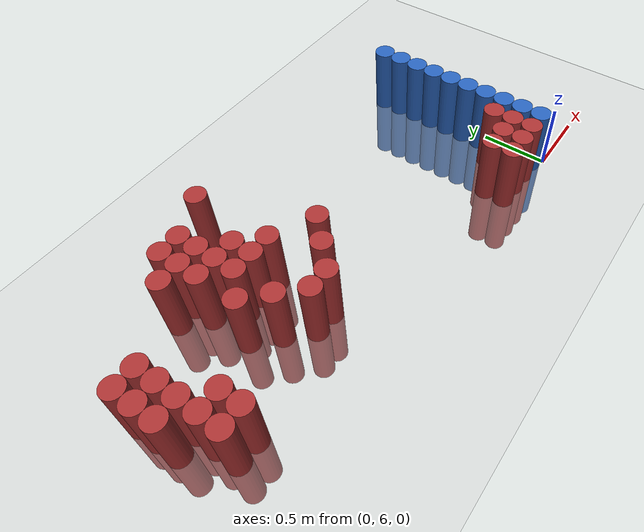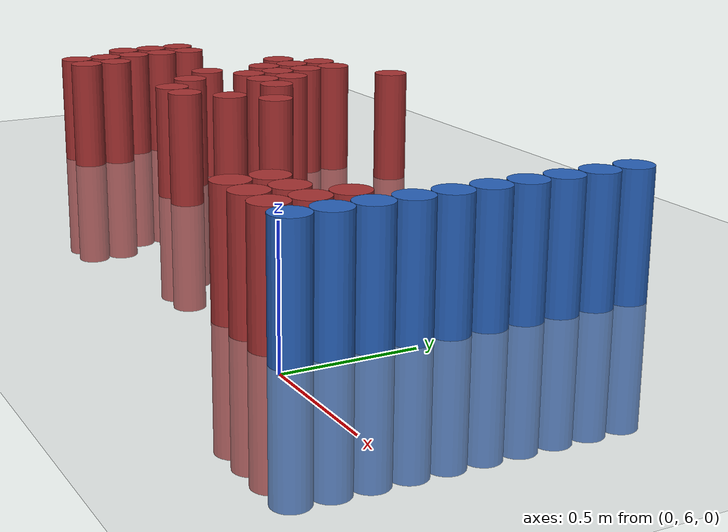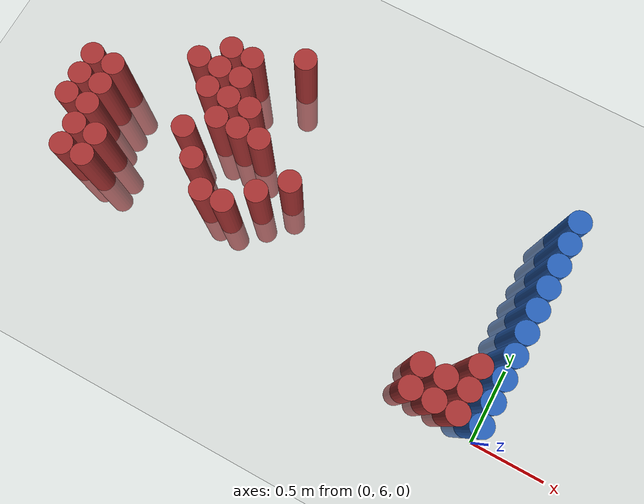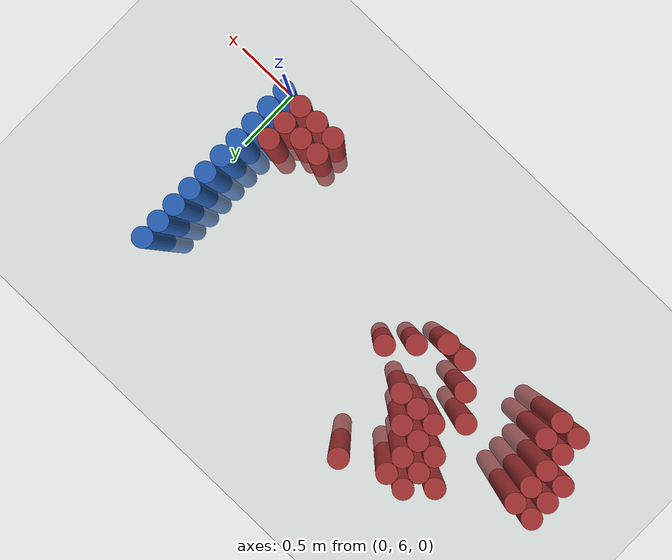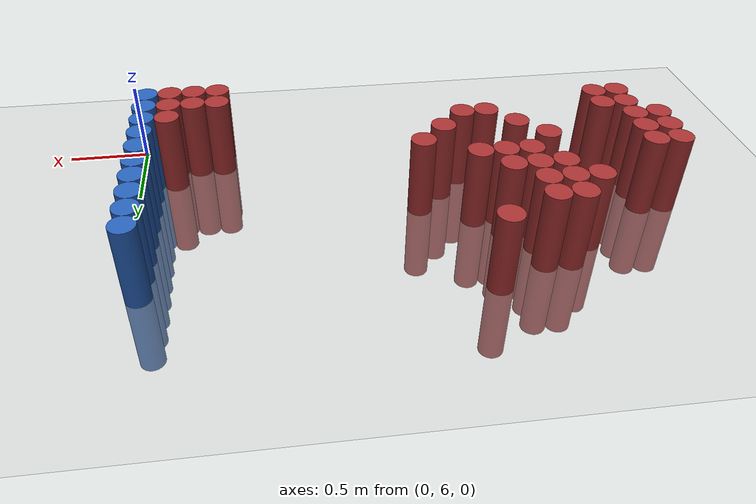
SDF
<sdf version="1.6">
 <world name="world_215">
  <model name="ground_plane">
   <static>1</static>
   <link name="link">
    <collision name="collision">
     <geometry><plane><normal>0 0 1</normal><size>100 100</size></plane></geometry>
     <surface><friction><ode><mu>100</mu><mu2>50</mu2></ode></friction></surface>
    </collision>
    <visual name="visual">
     <cast_shadows>0</cast_shadows>
     <geometry><plane><normal>0 0 1</normal><size>100 100</size></plane></geometry>
     <material>
      <script><uri>file://media/materials/scripts/gazebo.material</uri><name>Gazebo/Grey</name></script>
     </material>
    </visual>
   </link>
  </model>
  <model name="unit_cylinder_165">
   <static>1</static>
   <pose>-3.225000 6.675000 0.000000 0.000000 0.000000 0.000000</pose>
   <link name="link">
    <inertial>
     <mass>1</mass>
     <inertia><ixx>0.145833</ixx><ixy>0</ixy><ixz>0</ixz><iyy>0.145833</iyy><iyz>0</iyz><izz>0.125</izz></inertia>
    </inertial>
    <collision name="collision">
     <geometry><cylinder><radius>0.075000</radius><length>1</length></cylinder></geometry>
    </collision>
    <visual name="visual">
     <geometry><cylinder><radius>0.075000</radius><length>1</length></cylinder></geometry>
     <material>
      <ambient>0.648000 0.192000 0.192000 1</ambient>
      <diffuse>0.648000 0.192000 0.192000 1</diffuse>
     </material>
     <material>
      <script><name>Gazebo/Grey</name><uri>file://media/materials/scripts/gazebo.material</uri></script>
     </material>
    </visual>
   </link>
  </model>
  <model name="unit_cylinder_166">
   <static>1</static>
   <pose>-3.225000 6.825000 0.000000 0.000000 0.000000 0.000000</pose>
   <link name="link">
    <inertial>
     <mass>1</mass>
     <inertia><ixx>0.145833</ixx><ixy>0</ixy><ixz>0</ixz><iyy>0.145833</iyy><iyz>0</iyz><izz>0.125</izz></inertia>
    </inertial>
    <collision name="collision">
     <geometry><cylinder><radius>0.075000</radius><length>1</length></cylinder></geometry>
    </collision>
    <visual name="visual">
     <geometry><cylinder><radius>0.075000</radius><length>1</length></cylinder></geometry>
     <material>
      <ambient>0.648000 0.192000 0.192000 1</ambient>
      <diffuse>0.648000 0.192000 0.192000 1</diffuse>
     </material>
     <material>
      <script><name>Gazebo/Grey</name><uri>file://media/materials/scripts/gazebo.material</uri></script>
     </material>
    </visual>
   </link>
  </model>
  <model name="unit_cylinder_167">
   <static>1</static>
   <pose>-3.225000 6.975000 0.000000 0.000000 0.000000 0.000000</pose>
   <link name="link">
    <inertial>
     <mass>1</mass>
     <inertia><ixx>0.145833</ixx><ixy>0</ixy><ixz>0</ixz><iyy>0.145833</iyy><iyz>0</iyz><izz>0.125</izz></inertia>
    </inertial>
    <collision name="collision">
     <geometry><cylinder><radius>0.075000</radius><length>1</length></cylinder></geometry>
    </collision>
    <visual name="visual">
     <geometry><cylinder><radius>0.075000</radius><length>1</length></cylinder></geometry>
     <material>
      <ambient>0.648000 0.192000 0.192000 1</ambient>
      <diffuse>0.648000 0.192000 0.192000 1</diffuse>
     </material>
     <material>
      <script><name>Gazebo/Grey</name><uri>file://media/materials/scripts/gazebo.material</uri></script>
     </material>
    </visual>
   </link>
  </model>
  <model name="unit_cylinder_173">
   <static>1</static>
   <pose>-3.075000 6.375000 0.000000 0.000000 0.000000 0.000000</pose>
   <link name="link">
    <inertial>
     <mass>1</mass>
     <inertia><ixx>0.145833</ixx><ixy>0</ixy><ixz>0</ixz><iyy>0.145833</iyy><iyz>0</iyz><izz>0.125</izz></inertia>
    </inertial>
    <collision name="collision">
     <geometry><cylinder><radius>0.075000</radius><length>1</length></cylinder></geometry>
    </collision>
    <visual name="visual">
     <geometry><cylinder><radius>0.075000</radius><length>1</length></cylinder></geometry>
     <material>
      <ambient>0.648000 0.192000 0.192000 1</ambient>
      <diffuse>0.648000 0.192000 0.192000 1</diffuse>
     </material>
     <material>
      <script><name>Gazebo/Grey</name><uri>file://media/materials/scripts/gazebo.material</uri></script>
     </material>
    </visual>
   </link>
  </model>
  <model name="unit_cylinder_174">
   <static>1</static>
   <pose>-3.075000 6.525000 0.000000 0.000000 0.000000 0.000000</pose>
   <link name="link">
    <inertial>
     <mass>1</mass>
     <inertia><ixx>0.145833</ixx><ixy>0</ixy><ixz>0</ixz><iyy>0.145833</iyy><iyz>0</iyz><izz>0.125</izz></inertia>
    </inertial>
    <collision name="collision">
     <geometry><cylinder><radius>0.075000</radius><length>1</length></cylinder></geometry>
    </collision>
    <visual name="visual">
     <geometry><cylinder><radius>0.075000</radius><length>1</length></cylinder></geometry>
     <material>
      <ambient>0.648000 0.192000 0.192000 1</ambient>
      <diffuse>0.648000 0.192000 0.192000 1</diffuse>
     </material>
     <material>
      <script><name>Gazebo/Grey</name><uri>file://media/materials/scripts/gazebo.material</uri></script>
     </material>
    </visual>
   </link>
  </model>
  <model name="unit_cylinder_175">
   <static>1</static>
   <pose>-3.075000 6.675000 0.000000 0.000000 0.000000 0.000000</pose>
   <link name="link">
    <inertial>
     <mass>1</mass>
     <inertia><ixx>0.145833</ixx><ixy>0</ixy><ixz>0</ixz><iyy>0.145833</iyy><iyz>0</iyz><izz>0.125</izz></inertia>
    </inertial>
    <collision name="collision">
     <geometry><cylinder><radius>0.075000</radius><length>1</length></cylinder></geometry>
    </collision>
    <visual name="visual">
     <geometry><cylinder><radius>0.075000</radius><length>1</length></cylinder></geometry>
     <material>
      <ambient>0.648000 0.192000 0.192000 1</ambient>
      <diffuse>0.648000 0.192000 0.192000 1</diffuse>
     </material>
     <material>
      <script><name>Gazebo/Grey</name><uri>file://media/materials/scripts/gazebo.material</uri></script>
     </material>
    </visual>
   </link>
  </model>
  <model name="unit_cylinder_176">
   <static>1</static>
   <pose>-3.075000 6.825000 0.000000 0.000000 0.000000 0.000000</pose>
   <link name="link">
    <inertial>
     <mass>1</mass>
     <inertia><ixx>0.145833</ixx><ixy>0</ixy><ixz>0</ixz><iyy>0.145833</iyy><iyz>0</iyz><izz>0.125</izz></inertia>
    </inertial>
    <collision name="collision">
     <geometry><cylinder><radius>0.075000</radius><length>1</length></cylinder></geometry>
    </collision>
    <visual name="visual">
     <geometry><cylinder><radius>0.075000</radius><length>1</length></cylinder></geometry>
     <material>
      <ambient>0.648000 0.192000 0.192000 1</ambient>
      <diffuse>0.648000 0.192000 0.192000 1</diffuse>
     </material>
     <material>
      <script><name>Gazebo/Grey</name><uri>file://media/materials/scripts/gazebo.material</uri></script>
     </material>
    </visual>
   </link>
  </model>
  <model name="unit_cylinder_177">
   <static>1</static>
   <pose>-3.075000 6.975000 0.000000 0.000000 0.000000 0.000000</pose>
   <link name="link">
    <inertial>
     <mass>1</mass>
     <inertia><ixx>0.145833</ixx><ixy>0</ixy><ixz>0</ixz><iyy>0.145833</iyy><iyz>0</iyz><izz>0.125</izz></inertia>
    </inertial>
    <collision name="collision">
     <geometry><cylinder><radius>0.075000</radius><length>1</length></cylinder></geometry>
    </collision>
    <visual name="visual">
     <geometry><cylinder><radius>0.075000</radius><length>1</length></cylinder></geometry>
     <material>
      <ambient>0.648000 0.192000 0.192000 1</ambient>
      <diffuse>0.648000 0.192000 0.192000 1</diffuse>
     </material>
     <material>
      <script><name>Gazebo/Grey</name><uri>file://media/materials/scripts/gazebo.material</uri></script>
     </material>
    </visual>
   </link>
  </model>
  <model name="unit_cylinder_181">
   <static>1</static>
   <pose>-2.925000 6.375000 0.000000 0.000000 0.000000 0.000000</pose>
   <link name="link">
    <inertial>
     <mass>1</mass>
     <inertia><ixx>0.145833</ixx><ixy>0</ixy><ixz>0</ixz><iyy>0.145833</iyy><iyz>0</iyz><izz>0.125</izz></inertia>
    </inertial>
    <collision name="collision">
     <geometry><cylinder><radius>0.075000</radius><length>1</length></cylinder></geometry>
    </collision>
    <visual name="visual">
     <geometry><cylinder><radius>0.075000</radius><length>1</length></cylinder></geometry>
     <material>
      <ambient>0.648000 0.192000 0.192000 1</ambient>
      <diffuse>0.648000 0.192000 0.192000 1</diffuse>
     </material>
     <material>
      <script><name>Gazebo/Grey</name><uri>file://media/materials/scripts/gazebo.material</uri></script>
     </material>
    </visual>
   </link>
  </model>
  <model name="unit_cylinder_182">
   <static>1</static>
   <pose>-2.925000 6.525000 0.000000 0.000000 0.000000 0.000000</pose>
   <link name="link">
    <inertial>
     <mass>1</mass>
     <inertia><ixx>0.145833</ixx><ixy>0</ixy><ixz>0</ixz><iyy>0.145833</iyy><iyz>0</iyz><izz>0.125</izz></inertia>
    </inertial>
    <collision name="collision">
     <geometry><cylinder><radius>0.075000</radius><length>1</length></cylinder></geometry>
    </collision>
    <visual name="visual">
     <geometry><cylinder><radius>0.075000</radius><length>1</length></cylinder></geometry>
     <material>
      <ambient>0.648000 0.192000 0.192000 1</ambient>
      <diffuse>0.648000 0.192000 0.192000 1</diffuse>
     </material>
     <material>
      <script><name>Gazebo/Grey</name><uri>file://media/materials/scripts/gazebo.material</uri></script>
     </material>
    </visual>
   </link>
  </model>
  <model name="unit_cylinder_187">
   <static>1</static>
   <pose>-2.625000 7.275000 0.000000 0.000000 0.000000 0.000000</pose>
   <link name="link">
    <inertial>
     <mass>1</mass>
     <inertia><ixx>0.145833</ixx><ixy>0</ixy><ixz>0</ixz><iyy>0.145833</iyy><iyz>0</iyz><izz>0.125</izz></inertia>
    </inertial>
    <collision name="collision">
     <geometry><cylinder><radius>0.075000</radius><length>1</length></cylinder></geometry>
    </collision>
    <visual name="visual">
     <geometry><cylinder><radius>0.075000</radius><length>1</length></cylinder></geometry>
     <material>
      <ambient>0.648000 0.192000 0.192000 1</ambient>
      <diffuse>0.648000 0.192000 0.192000 1</diffuse>
     </material>
     <material>
      <script><name>Gazebo/Grey</name><uri>file://media/materials/scripts/gazebo.material</uri></script>
     </material>
    </visual>
   </link>
  </model>
  <model name="unit_cylinder_190">
   <static>1</static>
   <pose>-2.475000 6.825000 0.000000 0.000000 0.000000 0.000000</pose>
   <link name="link">
    <inertial>
     <mass>1</mass>
     <inertia><ixx>0.145833</ixx><ixy>0</ixy><ixz>0</ixz><iyy>0.145833</iyy><iyz>0</iyz><izz>0.125</izz></inertia>
    </inertial>
    <collision name="collision">
     <geometry><cylinder><radius>0.075000</radius><length>1</length></cylinder></geometry>
    </collision>
    <visual name="visual">
     <geometry><cylinder><radius>0.075000</radius><length>1</length></cylinder></geometry>
     <material>
      <ambient>0.648000 0.192000 0.192000 1</ambient>
      <diffuse>0.648000 0.192000 0.192000 1</diffuse>
     </material>
     <material>
      <script><name>Gazebo/Grey</name><uri>file://media/materials/scripts/gazebo.material</uri></script>
     </material>
    </visual>
   </link>
  </model>
  <model name="unit_cylinder_191">
   <static>1</static>
   <pose>-2.475000 7.125000 0.000000 0.000000 0.000000 0.000000</pose>
   <link name="link">
    <inertial>
     <mass>1</mass>
     <inertia><ixx>0.145833</ixx><ixy>0</ixy><ixz>0</ixz><iyy>0.145833</iyy><iyz>0</iyz><izz>0.125</izz></inertia>
    </inertial>
    <collision name="collision">
     <geometry><cylinder><radius>0.075000</radius><length>1</length></cylinder></geometry>
    </collision>
    <visual name="visual">
     <geometry><cylinder><radius>0.075000</radius><length>1</length></cylinder></geometry>
     <material>
      <ambient>0.648000 0.192000 0.192000 1</ambient>
      <diffuse>0.648000 0.192000 0.192000 1</diffuse>
     </material>
     <material>
      <script><name>Gazebo/Grey</name><uri>file://media/materials/scripts/gazebo.material</uri></script>
     </material>
    </visual>
   </link>
  </model>
  <model name="unit_cylinder_192">
   <static>1</static>
   <pose>-2.475000 7.275000 0.000000 0.000000 0.000000 0.000000</pose>
   <link name="link">
    <inertial>
     <mass>1</mass>
     <inertia><ixx>0.145833</ixx><ixy>0</ixy><ixz>0</ixz><iyy>0.145833</iyy><iyz>0</iyz><izz>0.125</izz></inertia>
    </inertial>
    <collision name="collision">
     <geometry><cylinder><radius>0.075000</radius><length>1</length></cylinder></geometry>
    </collision>
    <visual name="visual">
     <geometry><cylinder><radius>0.075000</radius><length>1</length></cylinder></geometry>
     <material>
      <ambient>0.648000 0.192000 0.192000 1</ambient>
      <diffuse>0.648000 0.192000 0.192000 1</diffuse>
     </material>
     <material>
      <script><name>Gazebo/Grey</name><uri>file://media/materials/scripts/gazebo.material</uri></script>
     </material>
    </visual>
   </link>
  </model>
  <model name="unit_cylinder_193">
   <static>1</static>
   <pose>-2.475000 7.425000 0.000000 0.000000 0.000000 0.000000</pose>
   <link name="link">
    <inertial>
     <mass>1</mass>
     <inertia><ixx>0.145833</ixx><ixy>0</ixy><ixz>0</ixz><iyy>0.145833</iyy><iyz>0</iyz><izz>0.125</izz></inertia>
    </inertial>
    <collision name="collision">
     <geometry><cylinder><radius>0.075000</radius><length>1</length></cylinder></geometry>
    </collision>
    <visual name="visual">
     <geometry><cylinder><radius>0.075000</radius><length>1</length></cylinder></geometry>
     <material>
      <ambient>0.648000 0.192000 0.192000 1</ambient>
      <diffuse>0.648000 0.192000 0.192000 1</diffuse>
     </material>
     <material>
      <script><name>Gazebo/Grey</name><uri>file://media/materials/scripts/gazebo.material</uri></script>
     </material>
    </visual>
   </link>
  </model>
  <model name="unit_cylinder_194">
   <static>1</static>
   <pose>-2.325000 6.675000 0.000000 0.000000 0.000000 0.000000</pose>
   <link name="link">
    <inertial>
     <mass>1</mass>
     <inertia><ixx>0.145833</ixx><ixy>0</ixy><ixz>0</ixz><iyy>0.145833</iyy><iyz>0</iyz><izz>0.125</izz></inertia>
    </inertial>
    <collision name="collision">
     <geometry><cylinder><radius>0.075000</radius><length>1</length></cylinder></geometry>
    </collision>
    <visual name="visual">
     <geometry><cylinder><radius>0.075000</radius><length>1</length></cylinder></geometry>
     <material>
      <ambient>0.648000 0.192000 0.192000 1</ambient>
      <diffuse>0.648000 0.192000 0.192000 1</diffuse>
     </material>
     <material>
      <script><name>Gazebo/Grey</name><uri>file://media/materials/scripts/gazebo.material</uri></script>
     </material>
    </visual>
   </link>
  </model>
  <model name="unit_cylinder_195">
   <static>1</static>
   <pose>-2.325000 6.975000 0.000000 0.000000 0.000000 0.000000</pose>
   <link name="link">
    <inertial>
     <mass>1</mass>
     <inertia><ixx>0.145833</ixx><ixy>0</ixy><ixz>0</ixz><iyy>0.145833</iyy><iyz>0</iyz><izz>0.125</izz></inertia>
    </inertial>
    <collision name="collision">
     <geometry><cylinder><radius>0.075000</radius><length>1</length></cylinder></geometry>
    </collision>
    <visual name="visual">
     <geometry><cylinder><radius>0.075000</radius><length>1</length></cylinder></geometry>
     <material>
      <ambient>0.648000 0.192000 0.192000 1</ambient>
      <diffuse>0.648000 0.192000 0.192000 1</diffuse>
     </material>
     <material>
      <script><name>Gazebo/Grey</name><uri>file://media/materials/scripts/gazebo.material</uri></script>
     </material>
    </visual>
   </link>
  </model>
  <model name="unit_cylinder_196">
   <static>1</static>
   <pose>-2.325000 7.125000 0.000000 0.000000 0.000000 0.000000</pose>
   <link name="link">
    <inertial>
     <mass>1</mass>
     <inertia><ixx>0.145833</ixx><ixy>0</ixy><ixz>0</ixz><iyy>0.145833</iyy><iyz>0</iyz><izz>0.125</izz></inertia>
    </inertial>
    <collision name="collision">
     <geometry><cylinder><radius>0.075000</radius><length>1</length></cylinder></geometry>
    </collision>
    <visual name="visual">
     <geometry><cylinder><radius>0.075000</radius><length>1</length></cylinder></geometry>
     <material>
      <ambient>0.648000 0.192000 0.192000 1</ambient>
      <diffuse>0.648000 0.192000 0.192000 1</diffuse>
     </material>
     <material>
      <script><name>Gazebo/Grey</name><uri>file://media/materials/scripts/gazebo.material</uri></script>
     </material>
    </visual>
   </link>
  </model>
  <model name="unit_cylinder_197">
   <static>1</static>
   <pose>-2.325000 7.275000 0.000000 0.000000 0.000000 0.000000</pose>
   <link name="link">
    <inertial>
     <mass>1</mass>
     <inertia><ixx>0.145833</ixx><ixy>0</ixy><ixz>0</ixz><iyy>0.145833</iyy><iyz>0</iyz><izz>0.125</izz></inertia>
    </inertial>
    <collision name="collision">
     <geometry><cylinder><radius>0.075000</radius><length>1</length></cylinder></geometry>
    </collision>
    <visual name="visual">
     <geometry><cylinder><radius>0.075000</radius><length>1</length></cylinder></geometry>
     <material>
      <ambient>0.648000 0.192000 0.192000 1</ambient>
      <diffuse>0.648000 0.192000 0.192000 1</diffuse>
     </material>
     <material>
      <script><name>Gazebo/Grey</name><uri>file://media/materials/scripts/gazebo.material</uri></script>
     </material>
    </visual>
   </link>
  </model>
  <model name="unit_cylinder_198">
   <static>1</static>
   <pose>-2.325000 7.425000 0.000000 0.000000 0.000000 0.000000</pose>
   <link name="link">
    <inertial>
     <mass>1</mass>
     <inertia><ixx>0.145833</ixx><ixy>0</ixy><ixz>0</ixz><iyy>0.145833</iyy><iyz>0</iyz><izz>0.125</izz></inertia>
    </inertial>
    <collision name="collision">
     <geometry><cylinder><radius>0.075000</radius><length>1</length></cylinder></geometry>
    </collision>
    <visual name="visual">
     <geometry><cylinder><radius>0.075000</radius><length>1</length></cylinder></geometry>
     <material>
      <ambient>0.648000 0.192000 0.192000 1</ambient>
      <diffuse>0.648000 0.192000 0.192000 1</diffuse>
     </material>
     <material>
      <script><name>Gazebo/Grey</name><uri>file://media/materials/scripts/gazebo.material</uri></script>
     </material>
    </visual>
   </link>
  </model>
  <model name="unit_cylinder_199">
   <static>1</static>
   <pose>-2.175000 6.525000 0.000000 0.000000 0.000000 0.000000</pose>
   <link name="link">
    <inertial>
     <mass>1</mass>
     <inertia><ixx>0.145833</ixx><ixy>0</ixy><ixz>0</ixz><iyy>0.145833</iyy><iyz>0</iyz><izz>0.125</izz></inertia>
    </inertial>
    <collision name="collision">
     <geometry><cylinder><radius>0.075000</radius><length>1</length></cylinder></geometry>
    </collision>
    <visual name="visual">
     <geometry><cylinder><radius>0.075000</radius><length>1</length></cylinder></geometry>
     <material>
      <ambient>0.648000 0.192000 0.192000 1</ambient>
      <diffuse>0.648000 0.192000 0.192000 1</diffuse>
     </material>
     <material>
      <script><name>Gazebo/Grey</name><uri>file://media/materials/scripts/gazebo.material</uri></script>
     </material>
    </visual>
   </link>
  </model>
  <model name="unit_cylinder_200">
   <static>1</static>
   <pose>-2.175000 6.975000 0.000000 0.000000 0.000000 0.000000</pose>
   <link name="link">
    <inertial>
     <mass>1</mass>
     <inertia><ixx>0.145833</ixx><ixy>0</ixy><ixz>0</ixz><iyy>0.145833</iyy><iyz>0</iyz><izz>0.125</izz></inertia>
    </inertial>
    <collision name="collision">
     <geometry><cylinder><radius>0.075000</radius><length>1</length></cylinder></geometry>
    </collision>
    <visual name="visual">
     <geometry><cylinder><radius>0.075000</radius><length>1</length></cylinder></geometry>
     <material>
      <ambient>0.648000 0.192000 0.192000 1</ambient>
      <diffuse>0.648000 0.192000 0.192000 1</diffuse>
     </material>
     <material>
      <script><name>Gazebo/Grey</name><uri>file://media/materials/scripts/gazebo.material</uri></script>
     </material>
    </visual>
   </link>
  </model>
  <model name="unit_cylinder_201">
   <static>1</static>
   <pose>-2.175000 7.125000 0.000000 0.000000 0.000000 0.000000</pose>
   <link name="link">
    <inertial>
     <mass>1</mass>
     <inertia><ixx>0.145833</ixx><ixy>0</ixy><ixz>0</ixz><iyy>0.145833</iyy><iyz>0</iyz><izz>0.125</izz></inertia>
    </inertial>
    <collision name="collision">
     <geometry><cylinder><radius>0.075000</radius><length>1</length></cylinder></geometry>
    </collision>
    <visual name="visual">
     <geometry><cylinder><radius>0.075000</radius><length>1</length></cylinder></geometry>
     <material>
      <ambient>0.648000 0.192000 0.192000 1</ambient>
      <diffuse>0.648000 0.192000 0.192000 1</diffuse>
     </material>
     <material>
      <script><name>Gazebo/Grey</name><uri>file://media/materials/scripts/gazebo.material</uri></script>
     </material>
    </visual>
   </link>
  </model>
  <model name="unit_cylinder_202">
   <static>1</static>
   <pose>-2.025000 6.525000 0.000000 0.000000 0.000000 0.000000</pose>
   <link name="link">
    <inertial>
     <mass>1</mass>
     <inertia><ixx>0.145833</ixx><ixy>0</ixy><ixz>0</ixz><iyy>0.145833</iyy><iyz>0</iyz><izz>0.125</izz></inertia>
    </inertial>
    <collision name="collision">
     <geometry><cylinder><radius>0.075000</radius><length>1</length></cylinder></geometry>
    </collision>
    <visual name="visual">
     <geometry><cylinder><radius>0.075000</radius><length>1</length></cylinder></geometry>
     <material>
      <ambient>0.648000 0.192000 0.192000 1</ambient>
      <diffuse>0.648000 0.192000 0.192000 1</diffuse>
     </material>
     <material>
      <script><name>Gazebo/Grey</name><uri>file://media/materials/scripts/gazebo.material</uri></script>
     </material>
    </visual>
   </link>
  </model>
  <model name="unit_cylinder_203">
   <static>1</static>
   <pose>-2.025000 6.975000 0.000000 0.000000 0.000000 0.000000</pose>
   <link name="link">
    <inertial>
     <mass>1</mass>
     <inertia><ixx>0.145833</ixx><ixy>0</ixy><ixz>0</ixz><iyy>0.145833</iyy><iyz>0</iyz><izz>0.125</izz></inertia>
    </inertial>
    <collision name="collision">
     <geometry><cylinder><radius>0.075000</radius><length>1</length></cylinder></geometry>
    </collision>
    <visual name="visual">
     <geometry><cylinder><radius>0.075000</radius><length>1</length></cylinder></geometry>
     <material>
      <ambient>0.648000 0.192000 0.192000 1</ambient>
      <diffuse>0.648000 0.192000 0.192000 1</diffuse>
     </material>
     <material>
      <script><name>Gazebo/Grey</name><uri>file://media/materials/scripts/gazebo.material</uri></script>
     </material>
    </visual>
   </link>
  </model>
  <model name="unit_cylinder_204">
   <static>1</static>
   <pose>-2.025000 7.575000 0.000000 0.000000 0.000000 0.000000</pose>
   <link name="link">
    <inertial>
     <mass>1</mass>
     <inertia><ixx>0.145833</ixx><ixy>0</ixy><ixz>0</ixz><iyy>0.145833</iyy><iyz>0</iyz><izz>0.125</izz></inertia>
    </inertial>
    <collision name="collision">
     <geometry><cylinder><radius>0.075000</radius><length>1</length></cylinder></geometry>
    </collision>
    <visual name="visual">
     <geometry><cylinder><radius>0.075000</radius><length>1</length></cylinder></geometry>
     <material>
      <ambient>0.648000 0.192000 0.192000 1</ambient>
      <diffuse>0.648000 0.192000 0.192000 1</diffuse>
     </material>
     <material>
      <script><name>Gazebo/Grey</name><uri>file://media/materials/scripts/gazebo.material</uri></script>
     </material>
    </visual>
   </link>
  </model>
  <model name="unit_cylinder_207">
   <static>1</static>
   <pose>-1.875000 6.675000 0.000000 0.000000 0.000000 0.000000</pose>
   <link name="link">
    <inertial>
     <mass>1</mass>
     <inertia><ixx>0.145833</ixx><ixy>0</ixy><ixz>0</ixz><iyy>0.145833</iyy><iyz>0</iyz><izz>0.125</izz></inertia>
    </inertial>
    <collision name="collision">
     <geometry><cylinder><radius>0.075000</radius><length>1</length></cylinder></geometry>
    </collision>
    <visual name="visual">
     <geometry><cylinder><radius>0.075000</radius><length>1</length></cylinder></geometry>
     <material>
      <ambient>0.648000 0.192000 0.192000 1</ambient>
      <diffuse>0.648000 0.192000 0.192000 1</diffuse>
     </material>
     <material>
      <script><name>Gazebo/Grey</name><uri>file://media/materials/scripts/gazebo.material</uri></script>
     </material>
    </visual>
   </link>
  </model>
  <model name="unit_cylinder_211">
   <static>1</static>
   <pose>-1.725000 6.825000 0.000000 0.000000 0.000000 0.000000</pose>
   <link name="link">
    <inertial>
     <mass>1</mass>
     <inertia><ixx>0.145833</ixx><ixy>0</ixy><ixz>0</ixz><iyy>0.145833</iyy><iyz>0</iyz><izz>0.125</izz></inertia>
    </inertial>
    <collision name="collision">
     <geometry><cylinder><radius>0.075000</radius><length>1</length></cylinder></geometry>
    </collision>
    <visual name="visual">
     <geometry><cylinder><radius>0.075000</radius><length>1</length></cylinder></geometry>
     <material>
      <ambient>0.648000 0.192000 0.192000 1</ambient>
      <diffuse>0.648000 0.192000 0.192000 1</diffuse>
     </material>
     <material>
      <script><name>Gazebo/Grey</name><uri>file://media/materials/scripts/gazebo.material</uri></script>
     </material>
    </visual>
   </link>
  </model>
  <model name="unit_cylinder_228">
   <static>1</static>
   <pose>-0.525000 6.075000 0.000000 0.000000 0.000000 0.000000</pose>
   <link name="link">
    <inertial>
     <mass>1</mass>
     <inertia><ixx>0.145833</ixx><ixy>0</ixy><ixz>0</ixz><iyy>0.145833</iyy><iyz>0</iyz><izz>0.125</izz></inertia>
    </inertial>
    <collision name="collision">
     <geometry><cylinder><radius>0.075000</radius><length>1</length></cylinder></geometry>
    </collision>
    <visual name="visual">
     <geometry><cylinder><radius>0.075000</radius><length>1</length></cylinder></geometry>
     <material>
      <ambient>0.648000 0.192000 0.192000 1</ambient>
      <diffuse>0.648000 0.192000 0.192000 1</diffuse>
     </material>
     <material>
      <script><name>Gazebo/Grey</name><uri>file://media/materials/scripts/gazebo.material</uri></script>
     </material>
    </visual>
   </link>
  </model>
  <model name="unit_cylinder_229">
   <static>1</static>
   <pose>-0.525000 6.225000 0.000000 0.000000 0.000000 0.000000</pose>
   <link name="link">
    <inertial>
     <mass>1</mass>
     <inertia><ixx>0.145833</ixx><ixy>0</ixy><ixz>0</ixz><iyy>0.145833</iyy><iyz>0</iyz><izz>0.125</izz></inertia>
    </inertial>
    <collision name="collision">
     <geometry><cylinder><radius>0.075000</radius><length>1</length></cylinder></geometry>
    </collision>
    <visual name="visual">
     <geometry><cylinder><radius>0.075000</radius><length>1</length></cylinder></geometry>
     <material>
      <ambient>0.648000 0.192000 0.192000 1</ambient>
      <diffuse>0.648000 0.192000 0.192000 1</diffuse>
     </material>
     <material>
      <script><name>Gazebo/Grey</name><uri>file://media/materials/scripts/gazebo.material</uri></script>
     </material>
    </visual>
   </link>
  </model>
  <model name="unit_cylinder_232">
   <static>1</static>
   <pose>-0.375000 6.075000 0.000000 0.000000 0.000000 0.000000</pose>
   <link name="link">
    <inertial>
     <mass>1</mass>
     <inertia><ixx>0.145833</ixx><ixy>0</ixy><ixz>0</ixz><iyy>0.145833</iyy><iyz>0</iyz><izz>0.125</izz></inertia>
    </inertial>
    <collision name="collision">
     <geometry><cylinder><radius>0.075000</radius><length>1</length></cylinder></geometry>
    </collision>
    <visual name="visual">
     <geometry><cylinder><radius>0.075000</radius><length>1</length></cylinder></geometry>
     <material>
      <ambient>0.648000 0.192000 0.192000 1</ambient>
      <diffuse>0.648000 0.192000 0.192000 1</diffuse>
     </material>
     <material>
      <script><name>Gazebo/Grey</name><uri>file://media/materials/scripts/gazebo.material</uri></script>
     </material>
    </visual>
   </link>
  </model>
  <model name="unit_cylinder_233">
   <static>1</static>
   <pose>-0.375000 6.225000 0.000000 0.000000 0.000000 0.000000</pose>
   <link name="link">
    <inertial>
     <mass>1</mass>
     <inertia><ixx>0.145833</ixx><ixy>0</ixy><ixz>0</ixz><iyy>0.145833</iyy><iyz>0</iyz><izz>0.125</izz></inertia>
    </inertial>
    <collision name="collision">
     <geometry><cylinder><radius>0.075000</radius><length>1</length></cylinder></geometry>
    </collision>
    <visual name="visual">
     <geometry><cylinder><radius>0.075000</radius><length>1</length></cylinder></geometry>
     <material>
      <ambient>0.648000 0.192000 0.192000 1</ambient>
      <diffuse>0.648000 0.192000 0.192000 1</diffuse>
     </material>
     <material>
      <script><name>Gazebo/Grey</name><uri>file://media/materials/scripts/gazebo.material</uri></script>
     </material>
    </visual>
   </link>
  </model>
  <model name="unit_cylinder_237">
   <static>1</static>
   <pose>-0.225000 6.075000 0.000000 0.000000 0.000000 0.000000</pose>
   <link name="link">
    <inertial>
     <mass>1</mass>
     <inertia><ixx>0.145833</ixx><ixy>0</ixy><ixz>0</ixz><iyy>0.145833</iyy><iyz>0</iyz><izz>0.125</izz></inertia>
    </inertial>
    <collision name="collision">
     <geometry><cylinder><radius>0.075000</radius><length>1</length></cylinder></geometry>
    </collision>
    <visual name="visual">
     <geometry><cylinder><radius>0.075000</radius><length>1</length></cylinder></geometry>
     <material>
      <ambient>0.648000 0.192000 0.192000 1</ambient>
      <diffuse>0.648000 0.192000 0.192000 1</diffuse>
     </material>
     <material>
      <script><name>Gazebo/Grey</name><uri>file://media/materials/scripts/gazebo.material</uri></script>
     </material>
    </visual>
   </link>
  </model>
  <model name="unit_cylinder_238">
   <static>1</static>
   <pose>-0.225000 6.225000 0.000000 0.000000 0.000000 0.000000</pose>
   <link name="link">
    <inertial>
     <mass>1</mass>
     <inertia><ixx>0.145833</ixx><ixy>0</ixy><ixz>0</ixz><iyy>0.145833</iyy><iyz>0</iyz><izz>0.125</izz></inertia>
    </inertial>
    <collision name="collision">
     <geometry><cylinder><radius>0.075000</radius><length>1</length></cylinder></geometry>
    </collision>
    <visual name="visual">
     <geometry><cylinder><radius>0.075000</radius><length>1</length></cylinder></geometry>
     <material>
      <ambient>0.648000 0.192000 0.192000 1</ambient>
      <diffuse>0.648000 0.192000 0.192000 1</diffuse>
     </material>
     <material>
      <script><name>Gazebo/Grey</name><uri>file://media/materials/scripts/gazebo.material</uri></script>
     </material>
    </visual>
   </link>
  </model>
  <model name="unit_cylinder_239">
   <static>1</static>
   <pose>-0.225000 6.375000 0.000000 0.000000 0.000000 0.000000</pose>
   <link name="link">
    <inertial>
     <mass>1</mass>
     <inertia><ixx>0.145833</ixx><ixy>0</ixy><ixz>0</ixz><iyy>0.145833</iyy><iyz>0</iyz><izz>0.125</izz></inertia>
    </inertial>
    <collision name="collision">
     <geometry><cylinder><radius>0.075000</radius><length>1</length></cylinder></geometry>
    </collision>
    <visual name="visual">
     <geometry><cylinder><radius>0.075000</radius><length>1</length></cylinder></geometry>
     <material>
      <ambient>0.648000 0.192000 0.192000 1</ambient>
      <diffuse>0.648000 0.192000 0.192000 1</diffuse>
     </material>
     <material>
      <script><name>Gazebo/Grey</name><uri>file://media/materials/scripts/gazebo.material</uri></script>
     </material>
    </visual>
   </link>
  </model>
  <model name="unit_cylinder_251">
   <static>1</static>
   <pose>-0.075000 6.075000 0.000000 0.000000 0.000000 0.000000</pose>
   <link name="link">
    <inertial>
     <mass>1</mass>
     <inertia><ixx>0.145833</ixx><ixy>0</ixy><ixz>0</ixz><iyy>0.145833</iyy><iyz>0</iyz><izz>0.125</izz></inertia>
    </inertial>
    <collision name="collision">
     <geometry><cylinder><radius>0.075000</radius><length>1</length></cylinder></geometry>
    </collision>
    <visual name="visual">
     <geometry><cylinder><radius>0.075000</radius><length>1</length></cylinder></geometry>
     <material>
      <ambient>0.152000 0.379000 0.720000 1</ambient>
      <diffuse>0.152000 0.379000 0.720000 1</diffuse>
     </material>
     <material>
      <script><name>Gazebo/Grey</name><uri>file://media/materials/scripts/gazebo.material</uri></script>
     </material>
    </visual>
   </link>
  </model>
  <model name="unit_cylinder_252">
   <static>1</static>
   <pose>-0.075000 6.225000 0.000000 0.000000 0.000000 0.000000</pose>
   <link name="link">
    <inertial>
     <mass>1</mass>
     <inertia><ixx>0.145833</ixx><ixy>0</ixy><ixz>0</ixz><iyy>0.145833</iyy><iyz>0</iyz><izz>0.125</izz></inertia>
    </inertial>
    <collision name="collision">
     <geometry><cylinder><radius>0.075000</radius><length>1</length></cylinder></geometry>
    </collision>
    <visual name="visual">
     <geometry><cylinder><radius>0.075000</radius><length>1</length></cylinder></geometry>
     <material>
      <ambient>0.152000 0.379000 0.720000 1</ambient>
      <diffuse>0.152000 0.379000 0.720000 1</diffuse>
     </material>
     <material>
      <script><name>Gazebo/Grey</name><uri>file://media/materials/scripts/gazebo.material</uri></script>
     </material>
    </visual>
   </link>
  </model>
  <model name="unit_cylinder_253">
   <static>1</static>
   <pose>-0.075000 6.375000 0.000000 0.000000 0.000000 0.000000</pose>
   <link name="link">
    <inertial>
     <mass>1</mass>
     <inertia><ixx>0.145833</ixx><ixy>0</ixy><ixz>0</ixz><iyy>0.145833</iyy><iyz>0</iyz><izz>0.125</izz></inertia>
    </inertial>
    <collision name="collision">
     <geometry><cylinder><radius>0.075000</radius><length>1</length></cylinder></geometry>
    </collision>
    <visual name="visual">
     <geometry><cylinder><radius>0.075000</radius><length>1</length></cylinder></geometry>
     <material>
      <ambient>0.152000 0.379000 0.720000 1</ambient>
      <diffuse>0.152000 0.379000 0.720000 1</diffuse>
     </material>
     <material>
      <script><name>Gazebo/Grey</name><uri>file://media/materials/scripts/gazebo.material</uri></script>
     </material>
    </visual>
   </link>
  </model>
  <model name="unit_cylinder_254">
   <static>1</static>
   <pose>-0.075000 6.525000 0.000000 0.000000 0.000000 0.000000</pose>
   <link name="link">
    <inertial>
     <mass>1</mass>
     <inertia><ixx>0.145833</ixx><ixy>0</ixy><ixz>0</ixz><iyy>0.145833</iyy><iyz>0</iyz><izz>0.125</izz></inertia>
    </inertial>
    <collision name="collision">
     <geometry><cylinder><radius>0.075000</radius><length>1</length></cylinder></geometry>
    </collision>
    <visual name="visual">
     <geometry><cylinder><radius>0.075000</radius><length>1</length></cylinder></geometry>
     <material>
      <ambient>0.152000 0.379000 0.720000 1</ambient>
      <diffuse>0.152000 0.379000 0.720000 1</diffuse>
     </material>
     <material>
      <script><name>Gazebo/Grey</name><uri>file://media/materials/scripts/gazebo.material</uri></script>
     </material>
    </visual>
   </link>
  </model>
  <model name="unit_cylinder_255">
   <static>1</static>
   <pose>-0.075000 6.675000 0.000000 0.000000 0.000000 0.000000</pose>
   <link name="link">
    <inertial>
     <mass>1</mass>
     <inertia><ixx>0.145833</ixx><ixy>0</ixy><ixz>0</ixz><iyy>0.145833</iyy><iyz>0</iyz><izz>0.125</izz></inertia>
    </inertial>
    <collision name="collision">
     <geometry><cylinder><radius>0.075000</radius><length>1</length></cylinder></geometry>
    </collision>
    <visual name="visual">
     <geometry><cylinder><radius>0.075000</radius><length>1</length></cylinder></geometry>
     <material>
      <ambient>0.152000 0.379000 0.720000 1</ambient>
      <diffuse>0.152000 0.379000 0.720000 1</diffuse>
     </material>
     <material>
      <script><name>Gazebo/Grey</name><uri>file://media/materials/scripts/gazebo.material</uri></script>
     </material>
    </visual>
   </link>
  </model>
  <model name="unit_cylinder_256">
   <static>1</static>
   <pose>-0.075000 6.825000 0.000000 0.000000 0.000000 0.000000</pose>
   <link name="link">
    <inertial>
     <mass>1</mass>
     <inertia><ixx>0.145833</ixx><ixy>0</ixy><ixz>0</ixz><iyy>0.145833</iyy><iyz>0</iyz><izz>0.125</izz></inertia>
    </inertial>
    <collision name="collision">
     <geometry><cylinder><radius>0.075000</radius><length>1</length></cylinder></geometry>
    </collision>
    <visual name="visual">
     <geometry><cylinder><radius>0.075000</radius><length>1</length></cylinder></geometry>
     <material>
      <ambient>0.152000 0.379000 0.720000 1</ambient>
      <diffuse>0.152000 0.379000 0.720000 1</diffuse>
     </material>
     <material>
      <script><name>Gazebo/Grey</name><uri>file://media/materials/scripts/gazebo.material</uri></script>
     </material>
    </visual>
   </link>
  </model>
  <model name="unit_cylinder_257">
   <static>1</static>
   <pose>-0.075000 6.975000 0.000000 0.000000 0.000000 0.000000</pose>
   <link name="link">
    <inertial>
     <mass>1</mass>
     <inertia><ixx>0.145833</ixx><ixy>0</ixy><ixz>0</ixz><iyy>0.145833</iyy><iyz>0</iyz><izz>0.125</izz></inertia>
    </inertial>
    <collision name="collision">
     <geometry><cylinder><radius>0.075000</radius><length>1</length></cylinder></geometry>
    </collision>
    <visual name="visual">
     <geometry><cylinder><radius>0.075000</radius><length>1</length></cylinder></geometry>
     <material>
      <ambient>0.152000 0.379000 0.720000 1</ambient>
      <diffuse>0.152000 0.379000 0.720000 1</diffuse>
     </material>
     <material>
      <script><name>Gazebo/Grey</name><uri>file://media/materials/scripts/gazebo.material</uri></script>
     </material>
    </visual>
   </link>
  </model>
  <model name="unit_cylinder_258">
   <static>1</static>
   <pose>-0.075000 7.125000 0.000000 0.000000 0.000000 0.000000</pose>
   <link name="link">
    <inertial>
     <mass>1</mass>
     <inertia><ixx>0.145833</ixx><ixy>0</ixy><ixz>0</ixz><iyy>0.145833</iyy><iyz>0</iyz><izz>0.125</izz></inertia>
    </inertial>
    <collision name="collision">
     <geometry><cylinder><radius>0.075000</radius><length>1</length></cylinder></geometry>
    </collision>
    <visual name="visual">
     <geometry><cylinder><radius>0.075000</radius><length>1</length></cylinder></geometry>
     <material>
      <ambient>0.152000 0.379000 0.720000 1</ambient>
      <diffuse>0.152000 0.379000 0.720000 1</diffuse>
     </material>
     <material>
      <script><name>Gazebo/Grey</name><uri>file://media/materials/scripts/gazebo.material</uri></script>
     </material>
    </visual>
   </link>
  </model>
  <model name="unit_cylinder_259">
   <static>1</static>
   <pose>-0.075000 7.275000 0.000000 0.000000 0.000000 0.000000</pose>
   <link name="link">
    <inertial>
     <mass>1</mass>
     <inertia><ixx>0.145833</ixx><ixy>0</ixy><ixz>0</ixz><iyy>0.145833</iyy><iyz>0</iyz><izz>0.125</izz></inertia>
    </inertial>
    <collision name="collision">
     <geometry><cylinder><radius>0.075000</radius><length>1</length></cylinder></geometry>
    </collision>
    <visual name="visual">
     <geometry><cylinder><radius>0.075000</radius><length>1</length></cylinder></geometry>
     <material>
      <ambient>0.152000 0.379000 0.720000 1</ambient>
      <diffuse>0.152000 0.379000 0.720000 1</diffuse>
     </material>
     <material>
      <script><name>Gazebo/Grey</name><uri>file://media/materials/scripts/gazebo.material</uri></script>
     </material>
    </visual>
   </link>
  </model>
  <model name="unit_cylinder_260">
   <static>1</static>
   <pose>-0.075000 7.425000 0.000000 0.000000 0.000000 0.000000</pose>
   <link name="link">
    <inertial>
     <mass>1</mass>
     <inertia><ixx>0.145833</ixx><ixy>0</ixy><ixz>0</ixz><iyy>0.145833</iyy><iyz>0</iyz><izz>0.125</izz></inertia>
    </inertial>
    <collision name="collision">
     <geometry><cylinder><radius>0.075000</radius><length>1</length></cylinder></geometry>
    </collision>
    <visual name="visual">
     <geometry><cylinder><radius>0.075000</radius><length>1</length></cylinder></geometry>
     <material>
      <ambient>0.152000 0.379000 0.720000 1</ambient>
      <diffuse>0.152000 0.379000 0.720000 1</diffuse>
     </material>
     <material>
      <script><name>Gazebo/Grey</name><uri>file://media/materials/scripts/gazebo.material</uri></script>
     </material>
    </visual>
   </link>
  </model>
 </world>
</sdf>
